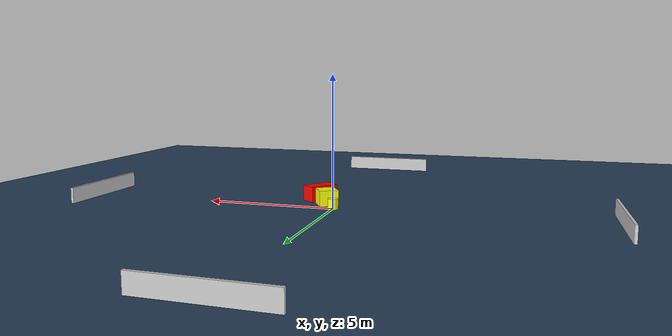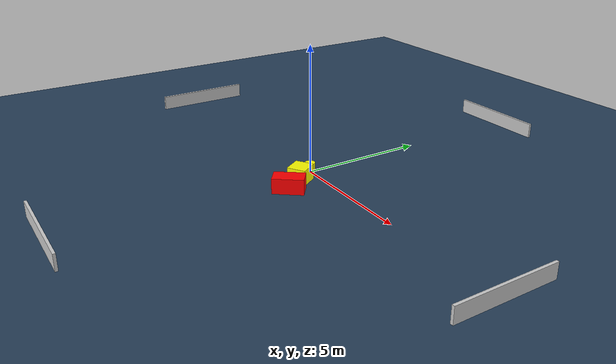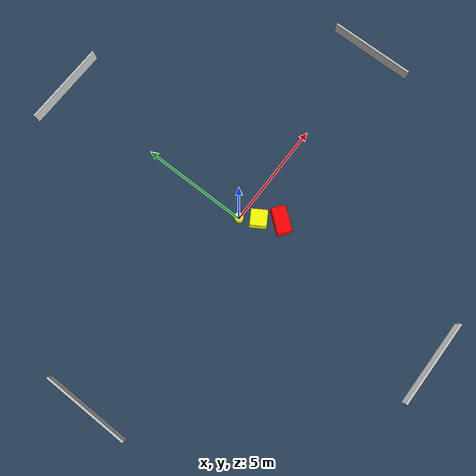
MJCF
<?xml version="1.0" ?>
<mujoco model="generated_environment">
  <option timestep="0.01" integrator="RK4" cone="elliptic"/>
  <default>
    <geom density="1"/>
  </default>
  <asset>
    <texture builtin="gradient" height="3072" name="skybox" rgb1="0.3 0.5 0.7" rgb2="0 0 0" type="skybox" width="512"/>
    <texture builtin="checker" height="300" name="groundplane" rgb1="0.2 0.3 0.4" rgb2="0.1 0.2 0.3" type="2d" width="300"/>
    <material name="groundplane" reflectance="0.2" texrepeat="5 5" texture="groundplane"/>
  </asset>
  <worldbody>
    <light dir="0 0 -1" directional="true" pos="0 0 1.5"/>
    <geom condim="3" friction="0.5 0.005 0.001" material="groundplane" name="floor" pos="0 0 0" size="0 0 0.05" type="plane"/>
    <body name="walls">
      <geom name="wall_1" condim="4" pos="-10.0 0.0 0.3" rgba="0.800000011920929 0.800000011920929 0.800000011920929 1.0" size="0.05 2.0 0.3" type="box"/>
      <geom name="wall_2" condim="4" pos="10.0 0.0 0.3" rgba="0.800000011920929 0.800000011920929 0.800000011920929 1.0" size="0.05 2.0 0.3" type="box"/>
      <geom name="wall_3" condim="4" pos="0.0 -10.0 0.3" rgba="0.800000011920929 0.800000011920929 0.800000011920929 1.0" size="2.0 0.05 0.3" type="box"/>
      <geom name="wall_4" condim="4" pos="0.0 10.0 0.3" rgba="0.800000011920929 0.800000011920929 0.800000011920929 1.0" size="2.0 0.05 0.3" type="box"/>
    </body>
    <body name="robot">
      <joint name="joint_x" type="slide" pos="0 0 0" axis="1 0 0"/>
      <joint name="joint_y" type="slide" pos="0 0 0" axis="0 1 0"/>
      <geom name="robot" type="cylinder" pos="0.0 0.0 0.2" size="0.2 0.2 0.0" mass="5.0" friction="1.0 0.005 0.0001" condim="4" rgba="1.0 1.0 0.0 1.0"/>
    </body>
    <body name="obstacle_1_movable">
      <geom name="obstacle_1_movable" condim="4" pos="0.4662294250571959 -0.719441256979269 0.3" euler="0 0 211.50363335728025" friction="0.0 0.005 0.001" rgba="1.0 1.0 0.0 1.0" size="0.3651838146118816 0.3705415214604033 0.3" type="box" mass="0.1"/>
      <joint type="free"/>
    </body>
    <body name="obstacle_2_static">
      <geom name="obstacle_2_static" condim="4" pos="0.9960720930612383 -1.5407469563069665 0.3" euler="0 0 321.8811988821233" friction="0.0 0.005 0.001" rgba="1.0 0.0 0.0 1.0" size="0.32614959633094515 0.5924154504107058 0.3" type="box"/>
    </body>
  </worldbody>
  <actuator>
    <motor name="actuator_x" joint="joint_x" gear="1" ctrlrange="-1 1"/>
    <motor name="actuator_y" joint="joint_y" gear="1" ctrlrange="-1 1"/>
  </actuator>
</mujoco>
